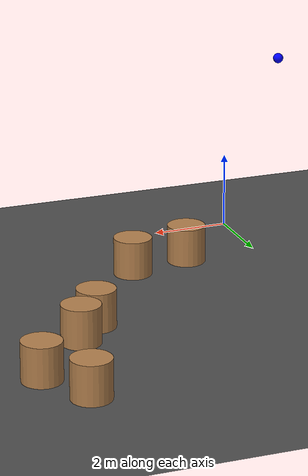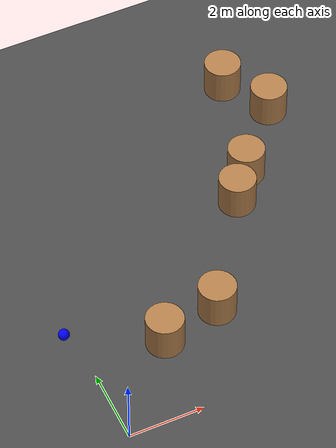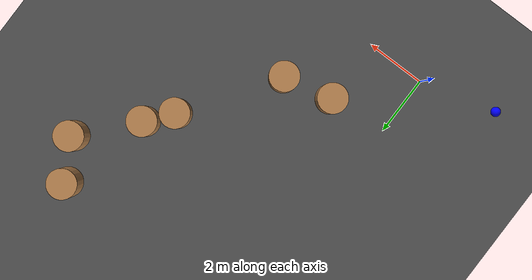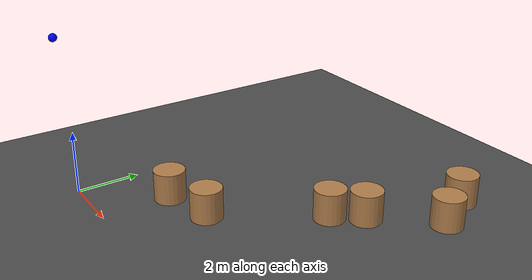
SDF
<sdf version="1.6">
 <world name="default">
  <light name="sun" type="directional">
   <pose>0 0 10 0 -0 0</pose>
   <diffuse>0.8 0.8 0.8 1</diffuse>
   <specular>0.2 0.2 0.2 1</specular>
   <attenuation>
    <range>1000</range>
    <constant>0.9</constant>
    <linear>0.01</linear>
    <quadratic>0.001</quadratic>
   </attenuation>
   <direction>-0.5 0.1 -0.9</direction>
  </light>
  <model name="ground_plane">
   <static>1</static>
   <link name="link">
    <collision name="collision">
     <geometry><plane><normal>0 0 1</normal><size>100 100</size></plane></geometry>
     <surface>
      <contact><collide_bitmask>65535</collide_bitmask></contact>
      <friction><ode><mu>100</mu><mu2>50</mu2></ode></friction>
     </surface>
    </collision>
    <visual name="visual">
     <cast_shadows>0</cast_shadows>
     <geometry><plane><normal>0 0 1</normal><size>100 100</size></plane></geometry>
     <material>
      <script><uri>file://media/materials/scripts/gazebo.material</uri><name>Gazebo/DarkGrey</name></script>
     </material>
    </visual>
   </link>
  </model>
  <gravity>0 0 -9.8</gravity>
  <magnetic_field>6e-06 2.3e-05 -4.2e-05</magnetic_field>
  <atmosphere type="adiabatic"/>
  <physics name="default_physics" default="0" type="ode">
   <max_step_size>0.001</max_step_size>
   <real_time_factor>1</real_time_factor>
   <real_time_update_rate>1000</real_time_update_rate>
  </physics>
  <scene><ambient>0.4 0.4 0.4 1</ambient><background>0.7 0.7 0.7 1</background><shadows>1</shadows></scene>
  <audio><device>default</device></audio>
  <spherical_coordinates>
   <surface_model>EARTH_WGS84</surface_model>
   <latitude_deg>0</latitude_deg>
   <longitude_deg>0</longitude_deg>
   <elevation>0</elevation>
   <heading_deg>0</heading_deg>
  </spherical_coordinates>
  <model name="unit_cylinder">
   <allow_auto_disable>false</allow_auto_disable>
   <pose>2 2.23 0.499998 3e-06 -3e-06 0</pose>
   <link name="link">
    <inertial>
     <mass>1</mass>
     <inertia><ixx>0.145833</ixx><ixy>0</ixy><ixz>0</ixz><iyy>0.145833</iyy><iyz>0</iyz><izz>0.125</izz></inertia>
    </inertial>
    <collision name="collision">
     <geometry><cylinder><radius>0.5</radius><length>1</length></cylinder></geometry>
    </collision>
    <visual name="visual">
     <geometry><cylinder><radius>0.5</radius><length>1</length></cylinder></geometry>
     <material>
      <script><name>Gazebo/Wood</name><uri>file://media/materials/scripts/gazebo.material</uri></script>
     </material>
    </visual>
   </link>
  </model>
  <model name="unit_cylinder_0">
   <pose>6.35 6.44 0.49999 0 -0 0.00028</pose>
   <link name="link">
    <inertial>
     <mass>1</mass>
     <inertia><ixx>0.145833</ixx><ixy>0</ixy><ixz>0</ixz><iyy>0.145833</iyy><iyz>0</iyz><izz>0.125</izz></inertia>
    </inertial>
    <collision name="collision">
     <geometry><cylinder><radius>0.5</radius><length>1</length></cylinder></geometry>
    </collision>
    <visual name="visual">
     <geometry><cylinder><radius>0.5</radius><length>1</length></cylinder></geometry>
     <material>
      <script><name>Gazebo/Wood</name><uri>file://media/materials/scripts/gazebo.material</uri></script>
     </material>
    </visual>
   </link>
  </model>
  <model name="unit_cylinder_1">
   <pose>3.63 2.6 0.499997 4e-06 3e-06 -0</pose>
   <link name="link">
    <inertial>
     <mass>1</mass>
     <inertia><ixx>0.145833</ixx><ixy>0</ixy><ixz>0</ixz><iyy>0.145833</iyy><iyz>0</iyz><izz>0.125</izz></inertia>
    </inertial>
    <collision name="collision">
     <geometry><cylinder><radius>0.5</radius><length>1</length></cylinder></geometry>
    </collision>
    <visual name="visual">
     <geometry><cylinder><radius>0.5</radius><length>1</length></cylinder></geometry>
     <material>
      <script><name>Gazebo/Wood</name><uri>file://media/materials/scripts/gazebo.material</uri></script>
     </material>
    </visual>
   </link>
  </model>
  <model name="unit_cylinder_2">
   <pose>5.68 5.61 0.499939 4e-06 4e-06 0.000139</pose>
   <link name="link">
    <inertial>
     <mass>1</mass>
     <inertia><ixx>0.145833</ixx><ixy>0</ixy><ixz>0</ixz><iyy>0.145833</iyy><iyz>0</iyz><izz>0.125</izz></inertia>
    </inertial>
    <collision name="collision">
     <geometry><cylinder><radius>0.5</radius><length>1</length></cylinder></geometry>
    </collision>
    <visual name="visual">
     <geometry><cylinder><radius>0.5</radius><length>1</length></cylinder></geometry>
     <material>
      <script><name>Gazebo/Wood</name><uri>file://media/materials/scripts/gazebo.material</uri></script>
     </material>
    </visual>
   </link>
  </model>
  <model name="unit_cylinder_3">
   <pose>7.9 8.2 0.499992 -3e-06 -4e-06 -0</pose>
   <link name="link">
    <inertial>
     <mass>1</mass>
     <inertia><ixx>0.145833</ixx><ixy>0</ixy><ixz>0</ixz><iyy>0.145833</iyy><iyz>0</iyz><izz>0.125</izz></inertia>
    </inertial>
    <collision name="collision">
     <geometry><cylinder><radius>0.5</radius><length>1</length></cylinder></geometry>
    </collision>
    <visual name="visual">
     <geometry><cylinder><radius>0.5</radius><length>1</length></cylinder></geometry>
     <material>
      <script><name>Gazebo/Wood</name><uri>file://media/materials/scripts/gazebo.material</uri></script>
     </material>
    </visual>
   </link>
  </model>
  <model name="unit_cylinder_4">
   <pose>7.16 9.53 0.5 0 -0 0</pose>
   <link name="link">
    <inertial>
     <mass>1</mass>
     <inertia><ixx>0.145833</ixx><ixy>0</ixy><ixz>0</ixz><iyy>0.145833</iyy><iyz>0</iyz><izz>0.125</izz></inertia>
    </inertial>
    <collision name="collision">
     <geometry><cylinder><radius>0.5</radius><length>1</length></cylinder></geometry>
    </collision>
    <visual name="visual">
     <geometry><cylinder><radius>0.5</radius><length>1</length></cylinder></geometry>
     <material>
      <script><name>Gazebo/Wood</name><uri>file://media/materials/scripts/gazebo.material</uri></script>
     </material>
    </visual>
   </link>
  </model>
  <model name="model_1">
   <allow_auto_disable>false</allow_auto_disable>
   <pose>-1.4550518862354467
          0.19147969491655248
          4.647626445242163
          1.3393376729164888
          1.4807817211829017
          2.553008919077728</pose>
   <link name="link">
    <inertial>
     <mass>0.02235544841956601</mass>
     <inertia>
      <ixx>0.0001604633614619541</ixx>
      <iyy>0.0001604633614619541</iyy>
      <izz>0.0001604633614619541</izz>
      <ixy>0.0</ixy>
      <ixz>0.0</ixz>
      <iyz>0.0</iyz>
     </inertia>
    </inertial>
    <collision name="collision">
     <geometry><sphere><radius>0.13395725957528468</radius></sphere></geometry>
     <surface>
      <bounce><restitution_coefficient>1</restitution_coefficient><threshold>5.0</threshold></bounce>
      <friction><ode><mu>6</mu></ode></friction>
     </surface>
    </collision>
    <visual name="visual">
     <geometry><sphere><radius>0.13395725957528468</radius></sphere></geometry>
     <material>
      <diffuse>0
              0
              1
              1</diffuse>
      <specular>1
              0
              0
              1</specular>
      <ambient>1
              0
              0
              1</ambient>
     </material>
    </visual>
   </link>
  </model>
 </world>
</sdf>
